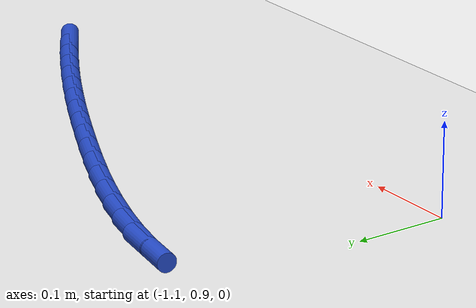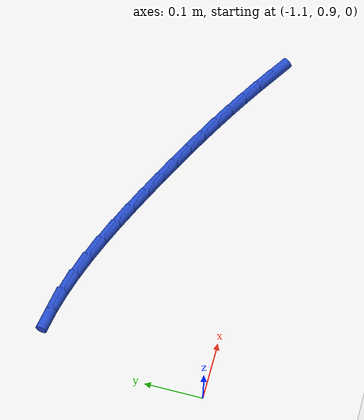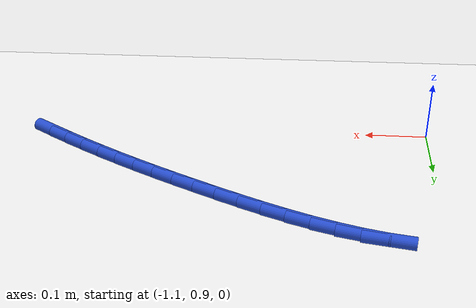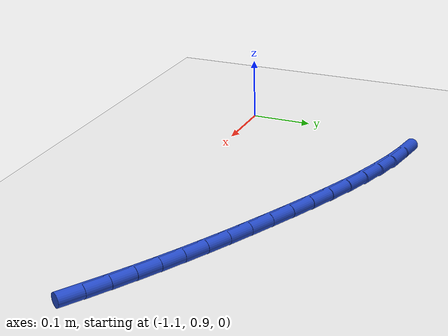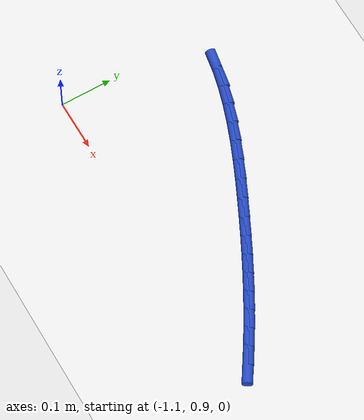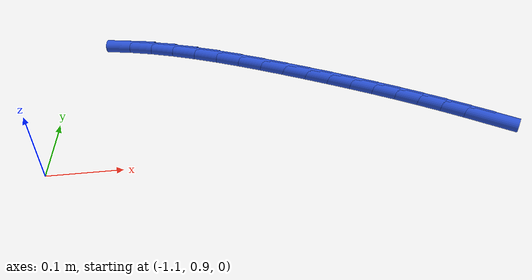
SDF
<sdf version="1.6">
 <world name="default">
  <model name="ground_plane">
   <static>1</static>
   <link name="link">
    <collision name="collision">
     <geometry><plane><normal>0 0 1</normal><size>100 100</size></plane></geometry>
     <surface><friction><ode><mu>100</mu><mu2>50</mu2></ode></friction></surface>
    </collision>
    <visual name="visual">
     <cast_shadows>0</cast_shadows>
     <geometry><plane><normal>0 0 1</normal><size>100 100</size></plane></geometry>
     <material>
      <script><uri>file://media/materials/scripts/gazebo.material</uri><name>Gazebo/WhiteGlow</name></script>
     </material>
    </visual>
   </link>
  </model>
  <model name="line">
   <link name="link_31">
    <pose>-0.48649570820087723 0.9337111297477674 0.01 0 1.57 -0.573235141384124</pose>
    <collision name="collision">
     <geometry><cylinder><radius>0.01</radius><length>0.08</length></cylinder></geometry>
    </collision>
    <visual name="visual">
     <material>
      <script><name>Gazebo/Blue</name><uri>file://media/materials/scripts/gazebo.material</uri></script>
     </material>
     <geometry><cylinder><radius>0.01</radius><length>0.08</length></cylinder></geometry>
    </visual>
   </link>
   <link name="link_32">
    <pose>-0.515632219225156 0.9525199807010726 0.01 0 1.57 -0.5540895461940869</pose>
    <collision name="collision">
     <geometry><cylinder><radius>0.01</radius><length>0.08</length></cylinder></geometry>
    </collision>
    <visual name="visual">
     <material>
      <script><name>Gazebo/Blue</name><uri>file://media/materials/scripts/gazebo.material</uri></script>
     </material>
     <geometry><cylinder><radius>0.01</radius><length>0.08</length></cylinder></geometry>
    </visual>
   </link>
   <link name="link_33">
    <pose>-0.5450480302908421 0.9707209016329209 0.01 0 1.57 -0.5358354134404212</pose>
    <collision name="collision">
     <geometry><cylinder><radius>0.01</radius><length>0.08</length></cylinder></geometry>
    </collision>
    <visual name="visual">
     <material>
      <script><name>Gazebo/Blue</name><uri>file://media/materials/scripts/gazebo.material</uri></script>
     </material>
     <geometry><cylinder><radius>0.01</radius><length>0.08</length></cylinder></geometry>
    </visual>
   </link>
   <link name="link_34">
    <pose>-0.5748245716936354 0.9884016967465236 0.01 0 1.57 -0.5186631136779175</pose>
    <collision name="collision">
     <geometry><cylinder><radius>0.01</radius><length>0.08</length></cylinder></geometry>
    </collision>
    <visual name="visual">
     <material>
      <script><name>Gazebo/Blue</name><uri>file://media/materials/scripts/gazebo.material</uri></script>
     </material>
     <geometry><cylinder><radius>0.01</radius><length>0.08</length></cylinder></geometry>
    </visual>
   </link>
   <link name="link_35">
    <pose>-0.605043273729235 1.005650170245091 0.01 0 1.57 -0.5027356909325598</pose>
    <collision name="collision">
     <geometry><cylinder><radius>0.01</radius><length>0.08</length></cylinder></geometry>
    </collision>
    <visual name="visual">
     <material>
      <script><name>Gazebo/Blue</name><uri>file://media/materials/scripts/gazebo.material</uri></script>
     </material>
     <geometry><cylinder><radius>0.01</radius><length>0.08</length></cylinder></geometry>
    </visual>
   </link>
   <link name="link_36">
    <pose>-0.6357855666933411 1.0225541263318343 0.01 0 1.57 -0.4881842220097204</pose>
    <collision name="collision">
     <geometry><cylinder><radius>0.01</radius><length>0.08</length></cylinder></geometry>
    </collision>
    <visual name="visual">
     <material>
      <script><name>Gazebo/Blue</name><uri>file://media/materials/scripts/gazebo.material</uri></script>
     </material>
     <geometry><cylinder><radius>0.01</radius><length>0.08</length></cylinder></geometry>
    </visual>
   </link>
   <link name="link_37">
    <pose>-0.6671328808816522 1.039201369209963 0.01 0 1.57 -0.47510520087693137</pose>
    <collision name="collision">
     <geometry><cylinder><radius>0.01</radius><length>0.08</length></cylinder></geometry>
    </collision>
    <visual name="visual">
     <material>
      <script><name>Gazebo/Blue</name><uri>file://media/materials/scripts/gazebo.material</uri></script>
     </material>
     <geometry><cylinder><radius>0.01</radius><length>0.08</length></cylinder></geometry>
    </visual>
   </link>
   <link name="link_38">
    <pose>-0.6991666465898684 1.0556797030826888 0.01 0 1.57 -0.46355993416197067</pose>
    <collision name="collision">
     <geometry><cylinder><radius>0.01</radius><length>0.08</length></cylinder></geometry>
    </collision>
    <visual name="visual">
     <material>
      <script><name>Gazebo/Blue</name><uri>file://media/materials/scripts/gazebo.material</uri></script>
     </material>
     <geometry><cylinder><radius>0.01</radius><length>0.08</length></cylinder></geometry>
    </visual>
   </link>
   <link name="link_39">
    <pose>-0.7319682941136888 1.0720769321532215 0.01 0 1.57 -0.4535450218004484</pose>
    <collision name="collision">
     <geometry><cylinder><radius>0.01</radius><length>0.08</length></cylinder></geometry>
    </collision>
    <visual name="visual">
     <material>
      <script><name>Gazebo/Blue</name><uri>file://media/materials/scripts/gazebo.material</uri></script>
     </material>
     <geometry><cylinder><radius>0.01</radius><length>0.08</length></cylinder></geometry>
    </visual>
   </link>
   <link name="link_40">
    <pose>-0.7656182217290372 1.0884790781928786 0.01 0 1.57 -0.44251287198266465</pose>
    <collision name="collision">
     <geometry><cylinder><radius>0.01</radius><length>0.08</length></cylinder></geometry>
    </collision>
    <visual name="visual">
     <material>
      <script><name>Gazebo/Blue</name><uri>file://media/materials/scripts/gazebo.material</uri></script>
     </material>
     <geometry><cylinder><radius>0.01</radius><length>0.08</length></cylinder></geometry>
    </visual>
   </link>
   <link name="link_41">
    <pose>-0.8001107535066229 1.1048235016660994 0.01 0 1.57 -0.42603625308372434</pose>
    <collision name="collision">
     <geometry><cylinder><radius>0.01</radius><length>0.08</length></cylinder></geometry>
    </collision>
    <visual name="visual">
     <material>
      <script><name>Gazebo/Blue</name><uri>file://media/materials/scripts/gazebo.material</uri></script>
     </material>
     <geometry><cylinder><radius>0.01</radius><length>0.08</length></cylinder></geometry>
    </visual>
   </link>
   <link name="link_42">
    <pose>-0.8352906702248071 1.120789282391924 0.01 0 1.57 -0.40350936769608253</pose>
    <collision name="collision">
     <geometry><cylinder><radius>0.01</radius><length>0.08</length></cylinder></geometry>
    </collision>
    <visual name="visual">
     <material>
      <script><name>Gazebo/Blue</name><uri>file://media/materials/scripts/gazebo.material</uri></script>
     </material>
     <geometry><cylinder><radius>0.01</radius><length>0.08</length></cylinder></geometry>
    </visual>
   </link>
   <link name="link_43">
    <pose>-0.8709877995981985 1.1360296743105016 0.01 0 1.57 -0.3745270180034008</pose>
    <collision name="collision">
     <geometry><cylinder><radius>0.01</radius><length>0.08</length></cylinder></geometry>
    </collision>
    <visual name="visual">
     <material>
      <script><name>Gazebo/Blue</name><uri>file://media/materials/scripts/gazebo.material</uri></script>
     </material>
     <geometry><cylinder><radius>0.01</radius><length>0.08</length></cylinder></geometry>
    </visual>
   </link>
   <link name="link_44">
    <pose>-0.9070319693414046 1.150197931361981 0.01 0 1.57 -0.33844490134135236</pose>
    <collision name="collision">
     <geometry><cylinder><radius>0.01</radius><length>0.08</length></cylinder></geometry>
    </collision>
    <visual name="visual">
     <material>
      <script><name>Gazebo/Blue</name><uri>file://media/materials/scripts/gazebo.material</uri></script>
     </material>
     <geometry><cylinder><radius>0.01</radius><length>0.08</length></cylinder></geometry>
    </visual>
   </link>
   <link name="link_45">
    <pose>-0.9432530071690333 1.1629473074865113 0.01 0 1.57 -0.2943773504879512</pose>
    <collision name="collision">
     <geometry><cylinder><radius>0.01</radius><length>0.08</length></cylinder></geometry>
    </collision>
    <visual name="visual">
     <material>
      <script><name>Gazebo/Blue</name><uri>file://media/materials/scripts/gazebo.material</uri></script>
     </material>
     <geometry><cylinder><radius>0.01</radius><length>0.08</length></cylinder></geometry>
    </visual>
   </link>
   <link name="link_46">
    <pose>-0.979480740795692 1.1739310566242411 0.01 0 1.57 -0.2411991551934628</pose>
    <collision name="collision">
     <geometry><cylinder><radius>0.01</radius><length>0.08</length></cylinder></geometry>
    </collision>
    <visual name="visual">
     <material>
      <script><name>Gazebo/Blue</name><uri>file://media/materials/scripts/gazebo.material</uri></script>
     </material>
     <geometry><cylinder><radius>0.01</radius><length>0.08</length></cylinder></geometry>
    </visual>
   </link>
   <link name="link_47">
    <pose>-1.0155449979359892 1.1828024327153202 0.01 0 1.57 -0.177570974918984</pose>
    <collision name="collision">
     <geometry><cylinder><radius>0.01</radius><length>0.08</length></cylinder></geometry>
    </collision>
    <visual name="visual">
     <material>
      <script><name>Gazebo/Blue</name><uri>file://media/materials/scripts/gazebo.material</uri></script>
     </material>
     <geometry><cylinder><radius>0.01</radius><length>0.08</length></cylinder></geometry>
    </visual>
   </link>
  </model>
 </world>
</sdf>
